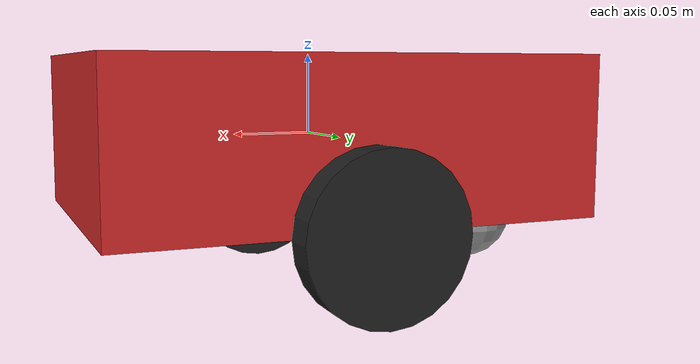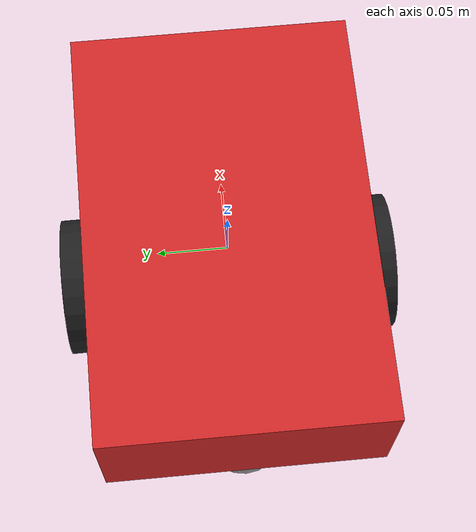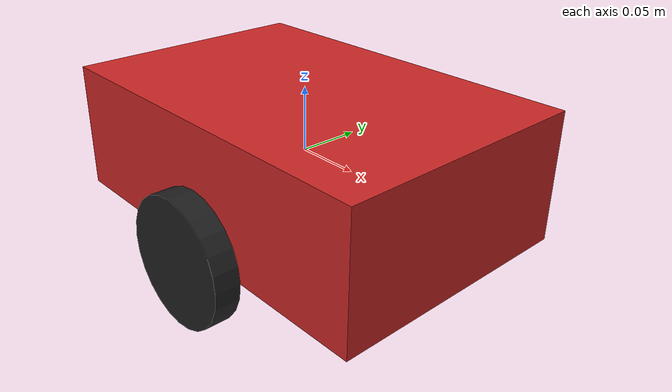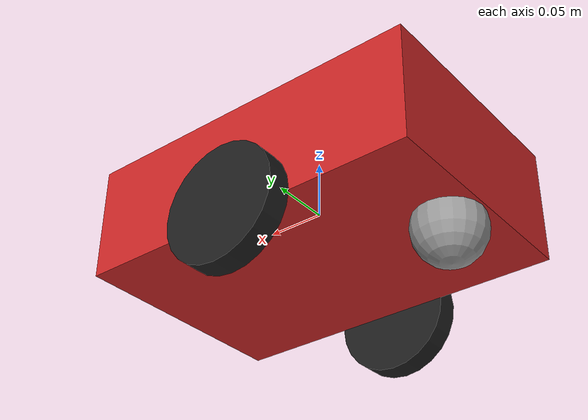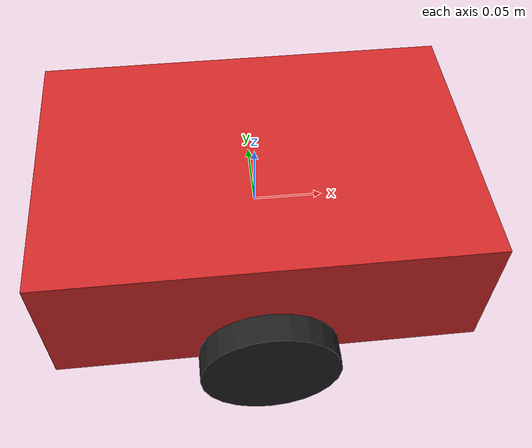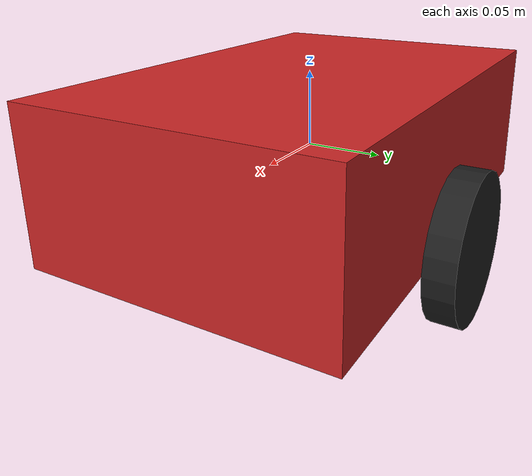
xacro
<?xml version="1.0"?>
<robot name="two_wheel_robot" xmlns:xacro="http://www.ros.org/wiki/xacro">

  <!-- 全局参数 -->
  <xacro:property name="base_length" value="0.3"/>
  <xacro:property name="base_width" value="0.2"/>
  <xacro:property name="base_height" value="0.1"/>
  <xacro:property name="wheel_r" value="0.05"/>
  <xacro:property name="wheel_l" value="0.02"/>
  <xacro:property name="wheel_space" value="0.22"/>

  <!-- 轮子宏：转轴100%垂直轮子圆面 -->
  <xacro:macro name="wheel" params="name x y z">
    <link name="${name}_wheel">
      <visual>
        <geometry><cylinder radius="${wheel_r}" length="${wheel_l}"/></geometry>
        <material name="black"/>
      </visual>
      <collision>
        <geometry><cylinder radius="${wheel_r}" length="${wheel_l}"/></geometry>
      </collision>
      <!-- 完整惯性矩阵，修复Gazebo报错 -->
      <inertial>
        <mass value="0.1"/>
        <inertia ixx="0.0005" ixy="0.0" ixz="0.0" iyy="0.0005" iyz="0.0" izz="0.0005"/>
      </inertial>
    </link>
    <joint name="${name}_joint" type="continuous">
      <parent link="base_link"/>
      <child link="${name}_wheel"/>
      <origin xyz="${x} ${y} ${z}" rpy="1.5708 0 0"/>
      <!-- 终极正确：转轴垂直轮子圆面 -->
      <axis xyz="0 0 1"/>
    </joint>
    <gazebo reference="${name}_wheel">
      <material>Gazebo/Black</material>
    </gazebo>
  </xacro:macro>

  <!-- 底盘 -->
  <link name="base_link">
    <visual>
      <geometry><box size="${base_length} ${base_width} ${base_height}"/></geometry>
      <material name="red"/>
    </visual>
    <collision>
      <geometry><box size="${base_length} ${base_width} ${base_height}"/></geometry>
    </collision>
    <!-- 完整惯性矩阵 -->
    <inertial>
      <mass value="1.0"/>
      <inertia ixx="0.01" ixy="0.0" ixz="0.0" iyy="0.01" iyz="0.0" izz="0.01"/>
    </inertial>
  </link>
  <gazebo reference="base_link">
    <material>Gazebo/Red</material>
  </gazebo>

  <!-- 左右轮 -->
  <xacro:wheel name="left" x="0.0" y="${wheel_space/2}" z="-0.05"/>
  <xacro:wheel name="right" x="0.0" y="-${wheel_space/2}" z="-0.05"/>

  <!-- 万向轮 -->
  <link name="caster_wheel">
    <visual>
      <geometry><sphere radius="0.03"/></geometry>
      <material name="gray"/>
    </visual>
    <collision>
      <geometry><sphere radius="0.03"/></geometry>
    </collision>
    <inertial>
      <mass value="0.05"/>
      <inertia ixx="0.0001" ixy="0.0" ixz="0.0" iyy="0.0001" iyz="0.0" izz="0.0001"/>
    </inertial>
  </link>
  <joint name="caster_joint" type="fixed">
    <parent link="base_link"/>
    <child link="caster_wheel"/>
    <origin xyz="-0.12 0 -0.06"/>
  </joint>
  <gazebo reference="caster_wheel">
    <material>Gazebo/Gray</material>
  </gazebo>

  <!-- 差速驱动插件 -->
  <gazebo>
    <plugin name="differential_drive_controller" filename="libgazebo_ros_diff_drive.so">
      <alwaysOn>true</alwaysOn>
      <leftJoint>left_joint</leftJoint>
      <rightJoint>right_joint</rightJoint>
      <wheelSeparation>${wheel_space}</wheelSeparation>
      <wheelDiameter>${wheel_r*2}</wheelDiameter>
      <torque>10</torque>
      <commandTopic>cmd_vel</commandTopic>
    </plugin>
  </gazebo>
</robot>
